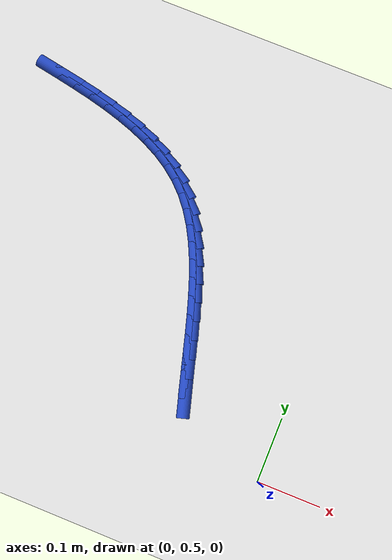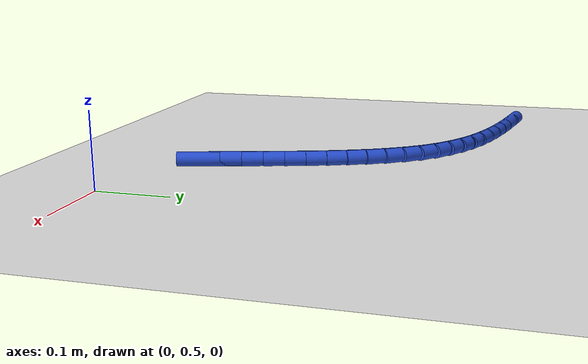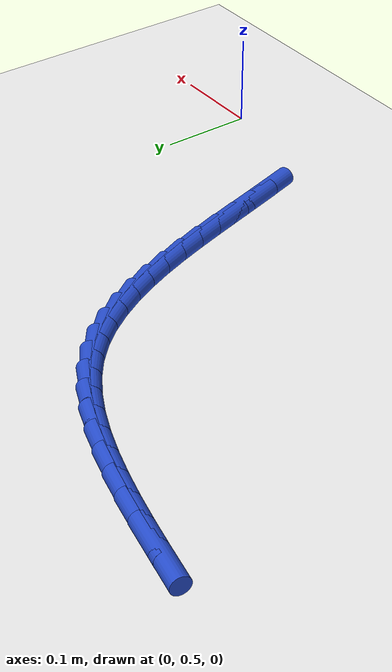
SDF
<sdf version="1.6">
 <world name="default">
  <model name="ground_plane">
   <static>1</static>
   <link name="link">
    <collision name="collision">
     <geometry><plane><normal>0 0 1</normal><size>100 100</size></plane></geometry>
     <surface><friction><ode><mu>100</mu><mu2>50</mu2></ode></friction></surface>
    </collision>
    <visual name="visual">
     <cast_shadows>0</cast_shadows>
     <geometry><plane><normal>0 0 1</normal><size>100 100</size></plane></geometry>
     <material>
      <script><uri>file://media/materials/scripts/gazebo.material</uri><name>Gazebo/WhiteGlow</name></script>
     </material>
    </visual>
   </link>
  </model>
  <model name="line">
   <link name="link_22">
    <pose>-0.14946036299888837 0.5834655715615208 0.01 0 1.57 -1.2902107235715807</pose>
    <collision name="collision">
     <geometry><cylinder><radius>0.01</radius><length>0.08</length></cylinder></geometry>
    </collision>
    <visual name="visual">
     <material>
      <script><name>Gazebo/Blue</name><uri>file://media/materials/scripts/gazebo.material</uri></script>
     </material>
     <geometry><cylinder><radius>0.01</radius><length>0.08</length></cylinder></geometry>
    </visual>
   </link>
   <link name="link_23">
    <pose>-0.1575324752259274 0.6114754102843069 0.01 0 1.57 -1.2974201162601087</pose>
    <collision name="collision">
     <geometry><cylinder><radius>0.01</radius><length>0.08</length></cylinder></geometry>
    </collision>
    <visual name="visual">
     <material>
      <script><name>Gazebo/Blue</name><uri>file://media/materials/scripts/gazebo.material</uri></script>
     </material>
     <geometry><cylinder><radius>0.01</radius><length>0.08</length></cylinder></geometry>
    </visual>
   </link>
   <link name="link_24">
    <pose>-0.16543889463695097 0.6396727070945963 0.01 0 1.57 -1.2953936369599792</pose>
    <collision name="collision">
     <geometry><cylinder><radius>0.01</radius><length>0.08</length></cylinder></geometry>
    </collision>
    <visual name="visual">
     <material>
      <script><name>Gazebo/Blue</name><uri>file://media/materials/scripts/gazebo.material</uri></script>
     </material>
     <geometry><cylinder><radius>0.01</radius><length>0.08</length></cylinder></geometry>
    </visual>
   </link>
   <link name="link_25">
    <pose>-0.17339678159336025 0.6678339034704188 0.01 0 1.57 -1.2840793312324243</pose>
    <collision name="collision">
     <geometry><cylinder><radius>0.01</radius><length>0.08</length></cylinder></geometry>
    </collision>
    <visual name="visual">
     <material>
      <script><name>Gazebo/Blue</name><uri>file://media/materials/scripts/gazebo.material</uri></script>
     </material>
     <geometry><cylinder><radius>0.01</radius><length>0.08</length></cylinder></geometry>
    </visual>
   </link>
   <link name="link_26">
    <pose>-0.18162329645655642 0.6957354408898038 0.01 0 1.57 -1.2631313429511157</pose>
    <collision name="collision">
     <geometry><cylinder><radius>0.01</radius><length>0.08</length></cylinder></geometry>
    </collision>
    <visual name="visual">
     <material>
      <script><name>Gazebo/Blue</name><uri>file://media/materials/scripts/gazebo.material</uri></script>
     </material>
     <geometry><cylinder><radius>0.01</radius><length>0.08</length></cylinder></geometry>
    </visual>
   </link>
   <link name="link_27">
    <pose>-0.19033559958794055 0.7231537608307802 0.01 0 1.57 -1.23191497111487</pose>
    <collision name="collision">
     <geometry><cylinder><radius>0.01</radius><length>0.08</length></cylinder></geometry>
    </collision>
    <visual name="visual">
     <material>
      <script><name>Gazebo/Blue</name><uri>file://media/materials/scripts/gazebo.material</uri></script>
     </material>
     <geometry><cylinder><radius>0.01</radius><length>0.08</length></cylinder></geometry>
    </visual>
   </link>
   <link name="link_28">
    <pose>-0.19975085134891385 0.7498653047713778 0.01 0 1.57 -1.1895252259751068</pose>
    <collision name="collision">
     <geometry><cylinder><radius>0.01</radius><length>0.08</length></cylinder></geometry>
    </collision>
    <visual name="visual">
     <material>
      <script><name>Gazebo/Blue</name><uri>file://media/materials/scripts/gazebo.material</uri></script>
     </material>
     <geometry><cylinder><radius>0.01</radius><length>0.08</length></cylinder></geometry>
    </visual>
   </link>
   <link name="link_29">
    <pose>-0.21008621210087747 0.7756465141896257 0.01 0 1.57 -1.1348401717042604</pose>
    <collision name="collision">
     <geometry><cylinder><radius>0.01</radius><length>0.08</length></cylinder></geometry>
    </collision>
    <visual name="visual">
     <material>
      <script><name>Gazebo/Blue</name><uri>file://media/materials/scripts/gazebo.material</uri></script>
     </material>
     <geometry><cylinder><radius>0.01</radius><length>0.08</length></cylinder></geometry>
    </visual>
   </link>
   <link name="link_30">
    <pose>-0.2215588422052326 0.8002738305635537 0.01 0 1.57 -1.0666452629942134</pose>
    <collision name="collision">
     <geometry><cylinder><radius>0.01</radius><length>0.08</length></cylinder></geometry>
    </collision>
    <visual name="visual">
     <material>
      <script><name>Gazebo/Blue</name><uri>file://media/materials/scripts/gazebo.material</uri></script>
     </material>
     <geometry><cylinder><radius>0.01</radius><length>0.08</length></cylinder></geometry>
    </visual>
   </link>
   <link name="link_31">
    <pose>-0.2343859020233804 0.8235236953711909 0.01 0 1.57 -0.9838792312952803</pose>
    <collision name="collision">
     <geometry><cylinder><radius>0.01</radius><length>0.08</length></cylinder></geometry>
    </collision>
    <visual name="visual">
     <material>
      <script><name>Gazebo/Blue</name><uri>file://media/materials/scripts/gazebo.material</uri></script>
     </material>
     <geometry><cylinder><radius>0.01</radius><length>0.08</length></cylinder></geometry>
    </visual>
   </link>
   <link name="link_32">
    <pose>-0.24878455191672197 0.8451725500905667 0.01 0 1.57 -0.8860487198223572</pose>
    <collision name="collision">
     <geometry><cylinder><radius>0.01</radius><length>0.08</length></cylinder></geometry>
    </collision>
    <visual name="visual">
     <material>
      <script><name>Gazebo/Blue</name><uri>file://media/materials/scripts/gazebo.material</uri></script>
     </material>
     <geometry><cylinder><radius>0.01</radius><length>0.08</length></cylinder></geometry>
    </visual>
   </link>
   <link name="link_33">
    <pose>-0.2649719522466585 0.8649968361997107 0.01 0 1.57 -0.7738668720317252</pose>
    <collision name="collision">
     <geometry><cylinder><radius>0.01</radius><length>0.08</length></cylinder></geometry>
    </collision>
    <visual name="visual">
     <material>
      <script><name>Gazebo/Blue</name><uri>file://media/materials/scripts/gazebo.material</uri></script>
     </material>
     <geometry><cylinder><radius>0.01</radius><length>0.08</length></cylinder></geometry>
    </visual>
   </link>
   <link name="link_34">
    <pose>-0.2831640773829902 0.8827741686550347 0.01 0 1.57 -0.6571711630845941</pose>
    <collision name="collision">
     <geometry><cylinder><radius>0.01</radius><length>0.08</length></cylinder></geometry>
    </collision>
    <visual name="visual">
     <material>
      <script><name>Gazebo/Blue</name><uri>file://media/materials/scripts/gazebo.material</uri></script>
     </material>
     <geometry><cylinder><radius>0.01</radius><length>0.08</length></cylinder></geometry>
    </visual>
   </link>
   <link name="link_35">
    <pose>-0.30343938250542674 0.8984182306588055 0.01 0 1.57 -0.5529845581469688</pose>
    <collision name="collision">
     <geometry><cylinder><radius>0.01</radius><length>0.08</length></cylinder></geometry>
    </collision>
    <visual name="visual">
     <material>
      <script><name>Gazebo/Blue</name><uri>file://media/materials/scripts/gazebo.material</uri></script>
     </material>
     <geometry><cylinder><radius>0.01</radius><length>0.08</length></cylinder></geometry>
    </visual>
   </link>
   <link name="link_36">
    <pose>-0.32561240049498186 0.9121038431076137 0.01 0 1.57 -0.4637772609129677</pose>
    <collision name="collision">
     <geometry><cylinder><radius>0.01</radius><length>0.08</length></cylinder></geometry>
    </collision>
    <visual name="visual">
     <material>
      <script><name>Gazebo/Blue</name><uri>file://media/materials/scripts/gazebo.material</uri></script>
     </material>
     <geometry><cylinder><radius>0.01</radius><length>0.08</length></cylinder></geometry>
    </visual>
   </link>
   <link name="link_37">
    <pose>-0.3494677777151367 0.9240353980874438 0.01 0 1.57 -0.3890875161422431</pose>
    <collision name="collision">
     <geometry><cylinder><radius>0.01</radius><length>0.08</length></cylinder></geometry>
    </collision>
    <visual name="visual">
     <material>
      <script><name>Gazebo/Blue</name><uri>file://media/materials/scripts/gazebo.material</uri></script>
     </material>
     <geometry><cylinder><radius>0.01</radius><length>0.08</length></cylinder></geometry>
    </visual>
   </link>
   <link name="link_38">
    <pose>-0.3747901605293725 0.9344172876842802 0.01 0 1.57 -0.3277872301772088</pose>
    <collision name="collision">
     <geometry><cylinder><radius>0.01</radius><length>0.08</length></cylinder></geometry>
    </collision>
    <visual name="visual">
     <material>
      <script><name>Gazebo/Blue</name><uri>file://media/materials/scripts/gazebo.material</uri></script>
     </material>
     <geometry><cylinder><radius>0.01</radius><length>0.08</length></cylinder></geometry>
    </visual>
   </link>
   <link name="link_39">
    <pose>-0.40136419530116996 0.9434539039841071 0.01 0 1.57 -0.27853633046413173</pose>
    <collision name="collision">
     <geometry><cylinder><radius>0.01</radius><length>0.08</length></cylinder></geometry>
    </collision>
    <visual name="visual">
     <material>
      <script><name>Gazebo/Blue</name><uri>file://media/materials/scripts/gazebo.material</uri></script>
     </material>
     <geometry><cylinder><radius>0.01</radius><length>0.08</length></cylinder></geometry>
    </visual>
   </link>
   <link name="link_40">
    <pose>-0.4289745283940098 0.9513496390729086 0.01 0 1.57 -0.24005433711603805</pose>
    <collision name="collision">
     <geometry><cylinder><radius>0.01</radius><length>0.08</length></cylinder></geometry>
    </collision>
    <visual name="visual">
     <material>
      <script><name>Gazebo/Blue</name><uri>file://media/materials/scripts/gazebo.material</uri></script>
     </material>
     <geometry><cylinder><radius>0.01</radius><length>0.08</length></cylinder></geometry>
    </visual>
   </link>
   <link name="link_41">
    <pose>-0.45740580617137333 0.9583088850366699 0.01 0 1.57 -0.21125673599701678</pose>
    <collision name="collision">
     <geometry><cylinder><radius>0.01</radius><length>0.08</length></cylinder></geometry>
    </collision>
    <visual name="visual">
     <material>
      <script><name>Gazebo/Blue</name><uri>file://media/materials/scripts/gazebo.material</uri></script>
     </material>
     <geometry><cylinder><radius>0.01</radius><length>0.08</length></cylinder></geometry>
    </visual>
   </link>
   <link name="link_42">
    <pose>-0.4864426749967415 0.9645360339613744 0.01 0 1.57 -0.19131281208131376</pose>
    <collision name="collision">
     <geometry><cylinder><radius>0.01</radius><length>0.08</length></cylinder></geometry>
    </collision>
    <visual name="visual">
     <material>
      <script><name>Gazebo/Blue</name><uri>file://media/materials/scripts/gazebo.material</uri></script>
     </material>
     <geometry><cylinder><radius>0.01</radius><length>0.08</length></cylinder></geometry>
    </visual>
   </link>
   <link name="link_43">
    <pose>-0.5158697813679042 0.9702355215677121 0.01 0 1.57 -0.18034904905734403</pose>
    <collision name="collision">
     <geometry><cylinder><radius>0.01</radius><length>0.08</length></cylinder></geometry>
    </collision>
    <visual name="visual">
     <material>
      <script><name>Gazebo/Blue</name><uri>file://media/materials/scripts/gazebo.material</uri></script>
     </material>
     <geometry><cylinder><radius>0.01</radius><length>0.08</length></cylinder></geometry>
    </visual>
   </link>
  </model>
 </world>
</sdf>
